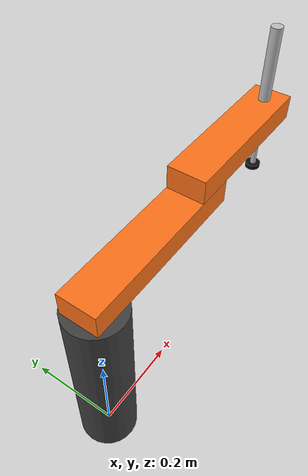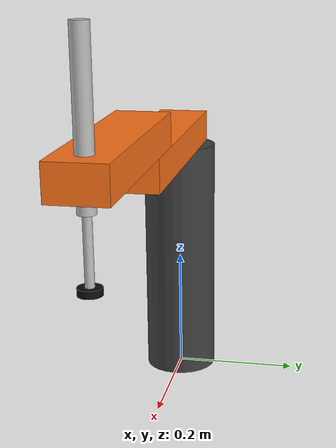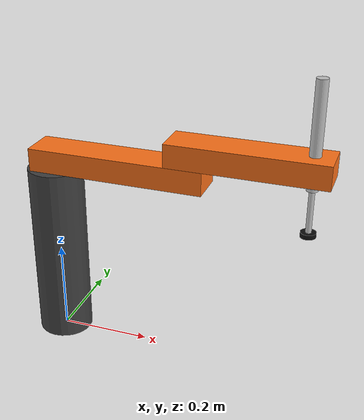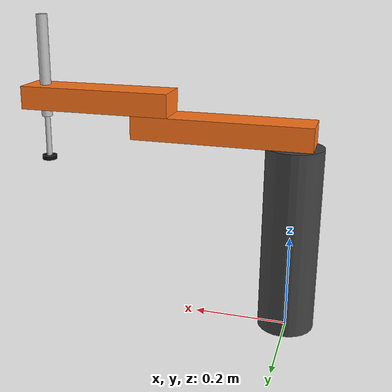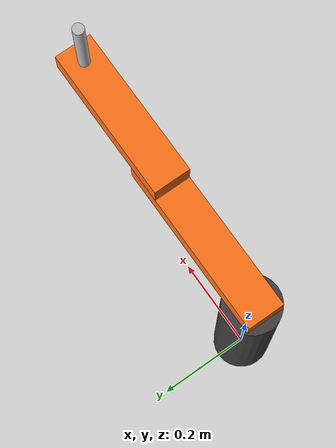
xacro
<?xml version="1.0"?>
<robot name="scara" xmlns:xacro="http://www.ros.org/wiki/xacro">

  <xacro:property name="column_height" value="0.40"/>
  <xacro:property name="l1" value="0.30"/>  <!-- shoulder (j1) to elbow (j2) -->
  <xacro:property name="l2" value="0.25"/>  <!-- elbow (j2) to cup axis (j3) -->
  <xacro:property name="arm_width" value="0.08"/>
  <xacro:property name="arm_thickness" value="0.05"/>
  <xacro:property name="tip_below_quill" value="0.12"/>  <!-- cup tip under the end of link 2 -->

  <!-- Working range: j1 ±150°, j2 ±145°, j3 0 to 0.15 m. The end stops (joint limits) sit a bit
       further out, because in Gazebo a motor can't drive a joint back off an end stop it has hit. -->

  <!-- Inertia of a solid box / upright cylinder (physics needs mass and inertia on every link) -->
  <xacro:macro name="box_inertia" params="m x y z xyz">
    <inertial>
      <origin xyz="${xyz}"/>
      <mass value="${m}"/>
      <inertia ixx="${m*(y*y+z*z)/12}" iyy="${m*(x*x+z*z)/12}" izz="${m*(x*x+y*y)/12}"
               ixy="0" ixz="0" iyz="0"/>
    </inertial>
  </xacro:macro>

  <xacro:macro name="cylinder_inertia" params="m r h xyz">
    <inertial>
      <origin xyz="${xyz}"/>
      <mass value="${m}"/>
      <inertia ixx="${m*(3*r*r+h*h)/12}" iyy="${m*(3*r*r+h*h)/12}" izz="${m*r*r/2}"
               ixy="0" ixz="0" iyz="0"/>
    </inertial>
  </xacro:macro>

  <!-- "world" + a fixed joint bolts the robot to the ground, so Gazebo doesn't let it fall over -->
  <link name="world"/>

  <joint name="world_joint" type="fixed">
    <parent link="world"/>
    <child link="base_link"/>
  </joint>

  <!-- Base column, 0.40 m tall -->
  <link name="base_link">
    <visual>
      <origin xyz="0 0 ${column_height/2}"/>
      <geometry><cylinder radius="0.06" length="${column_height}"/></geometry>
      <material name="dark_grey"><color rgba="0.25 0.25 0.25 1"/></material>
    </visual>
    <collision>
      <origin xyz="0 0 ${column_height/2}"/>
      <geometry><cylinder radius="0.06" length="${column_height}"/></geometry>
    </collision>
    <xacro:cylinder_inertia m="5.0" r="0.06" h="${column_height}" xyz="0 0 ${column_height/2}"/>
  </link>

  <!-- j1 shoulder: on top of the column, turns link 1 around the vertical axis -->
  <joint name="j1" type="revolute">
    <parent link="base_link"/>
    <child link="link1"/>
    <origin xyz="0 0 ${column_height}"/>
    <axis xyz="0 0 1"/>
    <limit lower="${radians(-155)}" upper="${radians(155)}" effort="50" velocity="2"/>
  </joint>

  <!-- Link 1. The box is a bit longer than l1 so its ends cover both joints. -->
  <link name="link1">
    <visual>
      <origin xyz="${l1/2} 0 ${arm_thickness/2}"/>
      <geometry><box size="${l1 + arm_width} ${arm_width} ${arm_thickness}"/></geometry>
      <material name="orange"><color rgba="1 0.45 0.1 1"/></material>
    </visual>
    <collision>
      <origin xyz="${l1/2} 0 ${arm_thickness/2}"/>
      <geometry><box size="${l1 + arm_width} ${arm_width} ${arm_thickness}"/></geometry>
    </collision>
    <xacro:box_inertia m="2.0" x="${l1 + arm_width}" y="${arm_width}" z="${arm_thickness}"
                       xyz="${l1/2} 0 ${arm_thickness/2}"/>
  </link>

  <!-- j2 elbow: at the end of link 1; link 2 sits on top of link 1 -->
  <joint name="j2" type="revolute">
    <parent link="link1"/>
    <child link="link2"/>
    <origin xyz="${l1} 0 ${arm_thickness}"/>
    <axis xyz="0 0 1"/>
    <limit lower="${radians(-150)}" upper="${radians(150)}" effort="50" velocity="2"/>
  </joint>

  <link name="link2">
    <visual>
      <origin xyz="${l2/2} 0 ${arm_thickness/2}"/>
      <geometry><box size="${l2 + arm_width} ${arm_width} ${arm_thickness}"/></geometry>
      <material name="orange"><color rgba="1 0.45 0.1 1"/></material>
    </visual>
    <collision>
      <origin xyz="${l2/2} 0 ${arm_thickness/2}"/>
      <geometry><box size="${l2 + arm_width} ${arm_width} ${arm_thickness}"/></geometry>
    </collision>
    <xacro:box_inertia m="1.5" x="${l2 + arm_width}" y="${arm_width}" z="${arm_thickness}"
                       xyz="${l2/2} 0 ${arm_thickness/2}"/>
  </link>

  <!-- j3 quill: at the end of link 2, slides straight down (axis -z) -->
  <joint name="j3" type="prismatic">
    <parent link="link2"/>
    <child link="quill"/>
    <origin xyz="${l2} 0 0"/>
    <axis xyz="0 0 -1"/>
    <limit lower="-0.005" upper="0.155" effort="100" velocity="0.5"/>
  </joint>

  <!-- Quill: a shaft through link 2, a vacuum tube and the suction cup (a black disc).
       No collision shapes, like the driller's drill: the cup must never push items around. -->
  <link name="quill">
    <visual>
      <origin xyz="0 0 0.09"/>
      <geometry><cylinder radius="0.012" length="0.22"/></geometry>
      <material name="silver"><color rgba="0.75 0.75 0.75 1"/></material>
    </visual>
    <visual>
      <origin xyz="0 0 -0.065"/>
      <geometry><cylinder radius="0.006" length="0.09"/></geometry>  <!-- vacuum tube -->
      <material name="silver"><color rgba="0.75 0.75 0.75 1"/></material>
    </visual>
    <visual>
      <origin xyz="0 0 -0.115"/>
      <geometry><cylinder radius="0.016" length="0.01"/></geometry>  <!-- 32 mm suction cup -->
      <material name="black"><color rgba="0.05 0.05 0.05 1"/></material>
    </visual>
    <xacro:cylinder_inertia m="0.5" r="0.025" h="0.32" xyz="0 0 0.04"/>
  </link>

  <!-- cup_tip: the face of the suction cup. With all joints at 0 it is at x 0.55, y 0, z 0.33. -->
  <link name="cup_tip"/>

  <joint name="cup_tip_joint" type="fixed">
    <parent link="quill"/>
    <child link="cup_tip"/>
    <origin xyz="0 0 ${-tip_below_quill}"/>
  </joint>

  <!-- ===== Gazebo ===== -->

  <xacro:macro name="motor" params="joint speed">
    <plugin filename="gz-sim-joint-position-controller-system"
            name="gz::sim::systems::JointPositionController">
      <joint_name>${joint}</joint_name>
      <topic>scara/${joint}_cmd</topic>
      <use_velocity_commands>true</use_velocity_commands>
      <cmd_max>${speed}</cmd_max>
    </plugin>
  </xacro:macro>

  <gazebo>
    <!-- Twice the driller's speeds: nothing is being cut here -->
    <xacro:motor joint="j1" speed="2.0"/>  <!-- rad/s -->
    <xacro:motor joint="j2" speed="2.0"/>  <!-- rad/s -->
    <xacro:motor joint="j3" speed="0.2"/>

    <!-- Publishes the joint positions on /joint_states -->
    <plugin filename="gz-sim-joint-state-publisher-system" name="gz::sim::systems::JointStatePublisher">
      <joint_name>j1</joint_name>
      <joint_name>j2</joint_name>
      <joint_name>j3</joint_name>
      <topic>joint_states</topic>
      <update_rate>50</update_rate>
    </plugin>
  </gazebo>

  <!-- ===== Suction cup ===== -->

  <xacro:property name="suction_slots" value="24"/>  <!-- = POOL in scara_sort/item_spawner.py -->

  <xacro:macro name="suction_slot" params="n">
    <xacro:if value="${n > 0}">
      <xacro:property name="item" value="${'item_%02d' % (n - 1)}"/>
      <gazebo>
        <plugin filename="gz-sim-detachable-joint-system" name="gz::sim::systems::DetachableJoint">
          <parent_link>quill</parent_link>
          <child_model>${item}</child_model>
          <child_link>link</child_link>
          <attach_topic>/scara/suction/${item}/attach</attach_topic>
          <detach_topic>/scara/suction/${item}/detach</detach_topic>
          <output_topic>/scara/suction/${item}/state</output_topic>
          <suppress_child_warning>true</suppress_child_warning>
        </plugin>
      </gazebo>
      <xacro:suction_slot n="${n - 1}"/>
    </xacro:if>
  </xacro:macro>

  <xacro:suction_slot n="${suction_slots}"/>

</robot>
